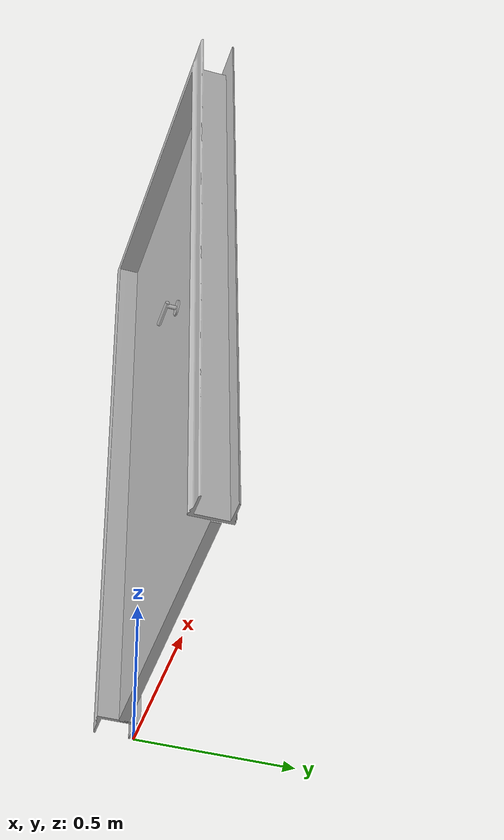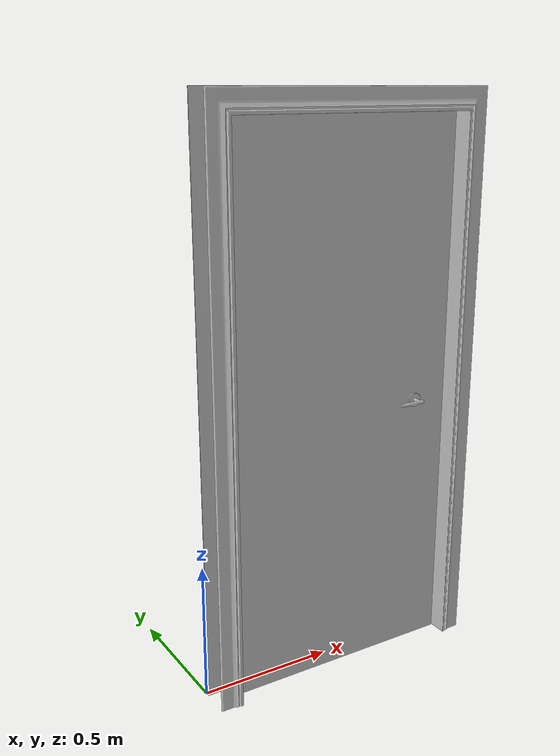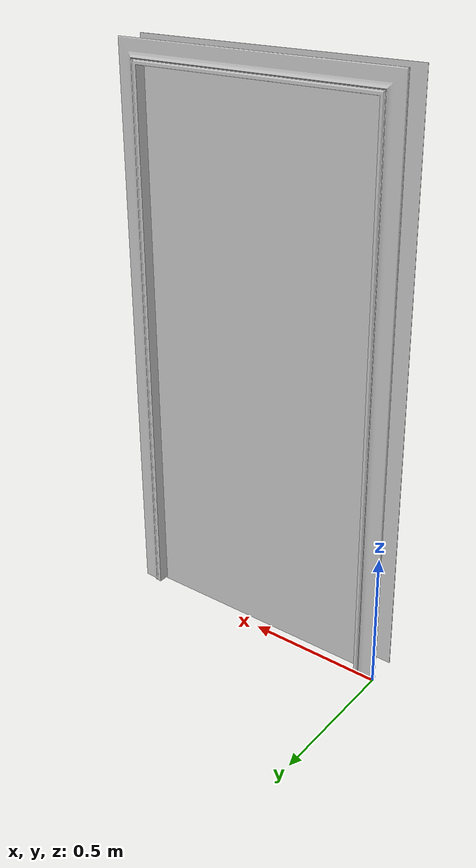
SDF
<?xml version="1.0"?>
<sdf version="1.4">
    <model name="door">
        <pose>0 0 0 1.5708 0 0</pose>

        <link name="door_frame">
            <inertial>
                <pose>0.525 1 0.05 0 0 0</pose>
                <mass>30.0</mass>
                <inertia>
                    <ixx>1</ixx>
                    <ixy>0.0</ixy>
                    <ixz>0.0</ixz>
                    <iyy>1</iyy>
                    <iyz>0.0</iyz>
                    <izz>1</izz>
                </inertia>
            </inertial>

            <visual name="visual_frame">
                <pose>0 0 0 0 0 0</pose>
                <geometry>
                    <mesh>
                        <uri>model://door/meshes/frame.stl</uri>
	                    <scale>0.1 0.1 0.1</scale>  <!-- TODO:   Find a proper scale for the mesh -->
                    </mesh>
                </geometry>
            </visual>

            <!-- TODO: Create a "collision" entry with the same geometry than the "visual" entry.-->
             <collision name="collision_frame">
                <pose>0 0 0 0 0 0</pose>
                <geometry>
                    <mesh>
                        <uri>model://door/meshes/frame.stl</uri>
	                    <scale>0.1 0.1 0.1</scale>
                    </mesh>
                </geometry>
            </collision>

        </link>

        <link name="door_body">
            <inertial>
                <pose>0.525 1 0.05 0 0 0</pose>
                <mass>1.0</mass>
                <inertia>
                    <ixx>0.083</ixx>
                    <ixy>0.0</ixy>
                    <ixz>0.0</ixz>
                    <iyy>0.083</iyy>
                    <iyz>0.0</iyz>
                    <izz>0.083</izz>
                </inertia>
            </inertial>

            <collision name="collision_door">
                <pose>0.525 0.995 0.05 0 0 0</pose>
                <geometry>
                    <box>
                        <size>0.9 1.99 0.03</size>
                    </box>
                </geometry>
            </collision>

            <visual name="visual_door">
                <pose>0.525 0.995 0.05 0 0 0</pose>
                <geometry>
                    <box>
                        <size>0.9 1.99 0.03</size>
                    </box>
                </geometry>
            </visual>
        </link>

        <link name="door_handle">
            <inertial>
                <pose>0.8 1.0 0.15 3.1416 0 0</pose>
                <mass>1.0</mass>
                <inertia>
                    <ixx>1</ixx>
                    <ixy>0.0</ixy>
                    <ixz>0.0</ixz>
                    <iyy>1</iyy>
                    <iyz>0.0</iyz>
                    <izz>1</izz>
                </inertia>
            </inertial>

            <visual name="visual_handle">

                <!-- TODO:   Find proper xyz and RPY values-->
                <pose>0.8 1.0 0.15 3.14 0 -1.57</pose>
                <geometry>
                    <mesh>
                        <uri>model://door/meshes/handle.stl</uri>
	                    <scale>0.001 0.001 0.001</scale>   <!-- TODO:   Find a proper scale for the mesh -->
                    </mesh>
                </geometry>
            </visual>

            <!-- TODO: Create a "collision" entry with the same geometry than the "visual" entry.-->
             <collision name="collision_handle">
                <pose>0.8 1.0 0.15 3.14 0 1.57</pose>
                <geometry>
                    <mesh>
                        <uri>model://door/meshes/handle.stl</uri>
	                     <scale>0.001 0.001 0.001</scale>
                    </mesh>
                </geometry>
             </collision>

        </link>

        <!-- TODO: Create a "joint" relation between door_body and door_handle. Define the mandatory elements and coherent limits.-->
        <joint name="door_handle" type="revolute">
            <parent>door_body</parent>
            <child>door_handle</child>
            <pose>0.8 1.0 0.15 3.14 0 1.57</pose>
            <axis>
                <xyz>0 0 1</xyz>
                <dynamics>
                    <damping>0.1</damping>
                    <friction>0.1</friction>
                </dynamics>
                 <limit>
                    <lower>0</lower>
                    <upper>1.57</upper>   <!-- give the limit that the handle can be rotated to open the door but has a limt angle of 1.57 rad -->
                </limit>
                <!-- TODO: Define coherent limits for this joint. -->

            </axis>
        </joint>

        <joint name="door_hinge" type="revolute">
            <parent>door_frame</parent>
            <child>door_body</child>
            <pose>0.075 0 0.065 0 0 0</pose>
            <axis>
                <xyz>0 1 0</xyz>
                <dynamics>
                    <damping>0.1</damping>
                    <friction>0.1</friction>
                </dynamics>

                <!-- TODO: Define coherent limits for this joint. -->
            <limit>
                    <lower>-2.19</lower>
                    <upper>2.19</upper>    <!-- give the limit that the door can be pushed to open but has a limt angle of 2.19rad -->
                </limit>
            </axis>
        </joint>

        <joint name="world_joint" type="revolute">
            <child>door_frame</child>
            <parent>world</parent>
            <axis>
                <limit>
                    <lower>0</lower>
                    <upper>0</upper>
                </limit>
                <xyz>0 1 0</xyz>
                <dynamics>
                    <damping>1.0</damping>
                </dynamics>
                <use_parent_model_frame>true</use_parent_model_frame>
            </axis>
            <physics>
                <ode>
                    <cfm_damping>1</cfm_damping>
                </ode>
            </physics>
        </joint>

    </model>
</sdf>
